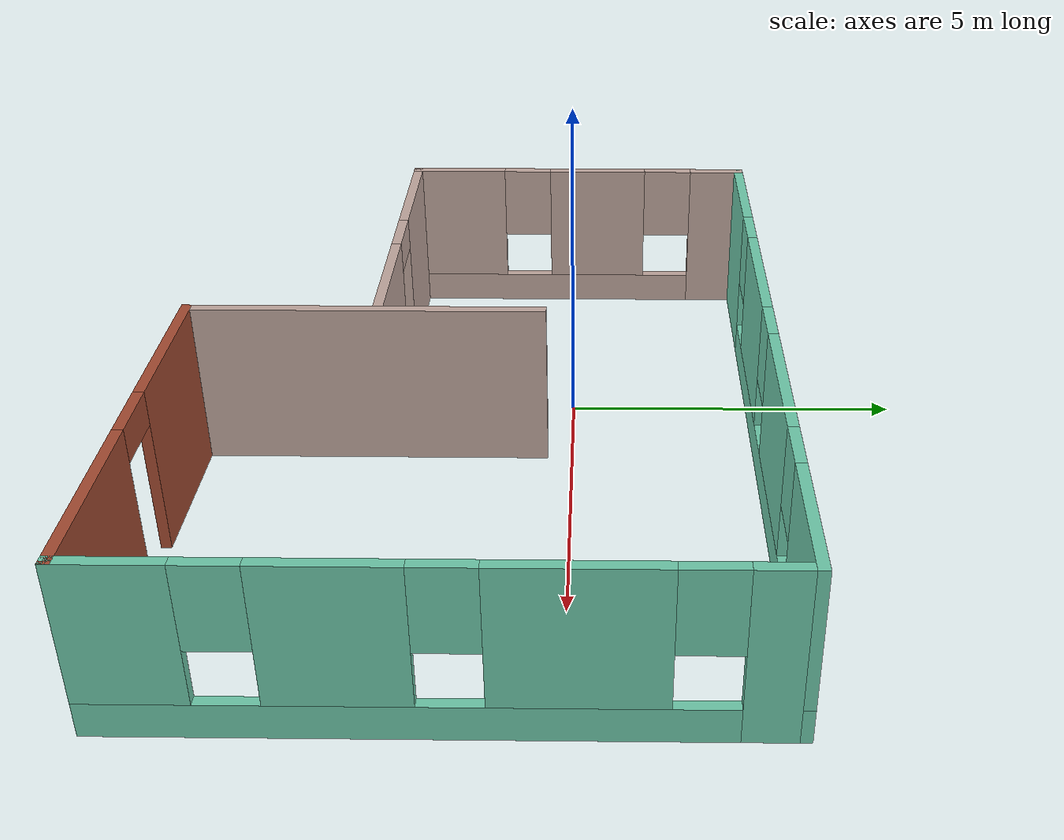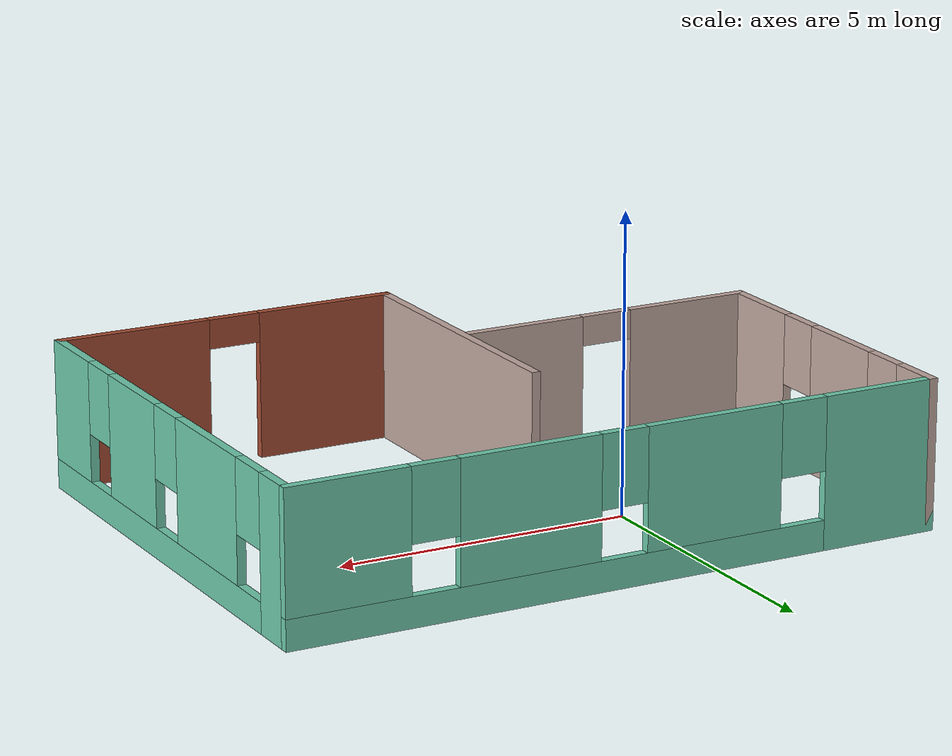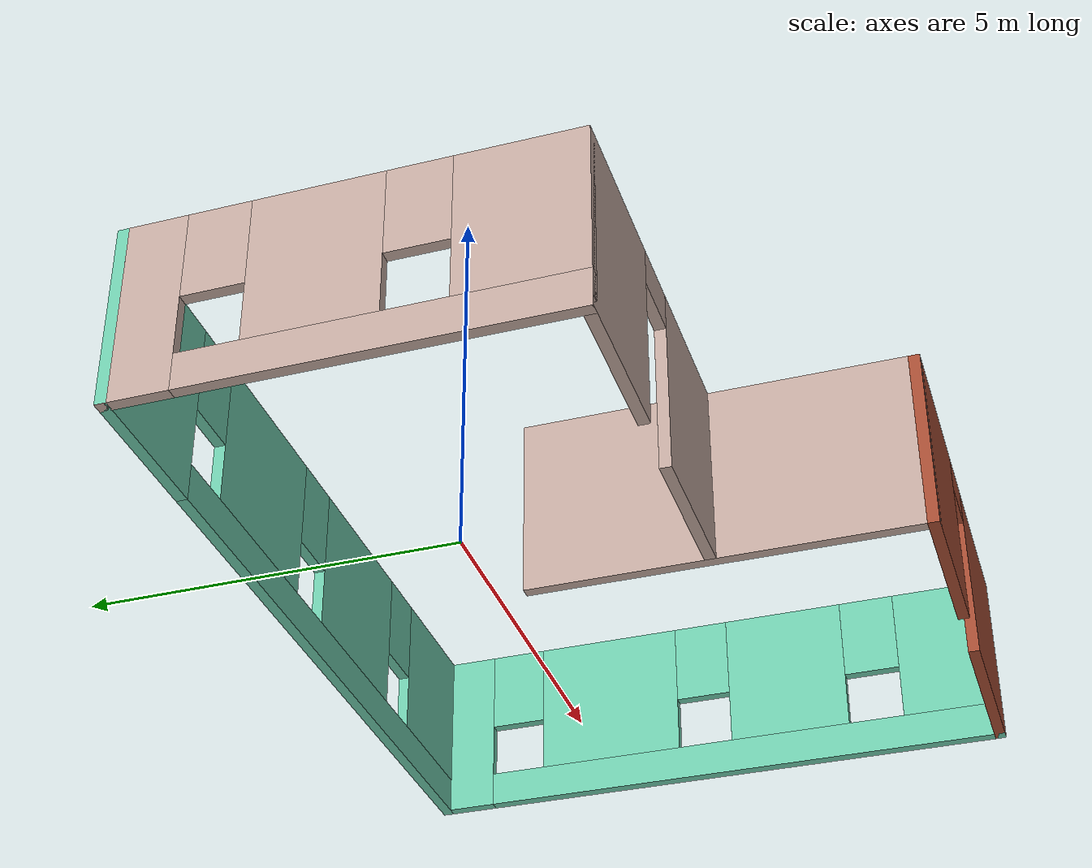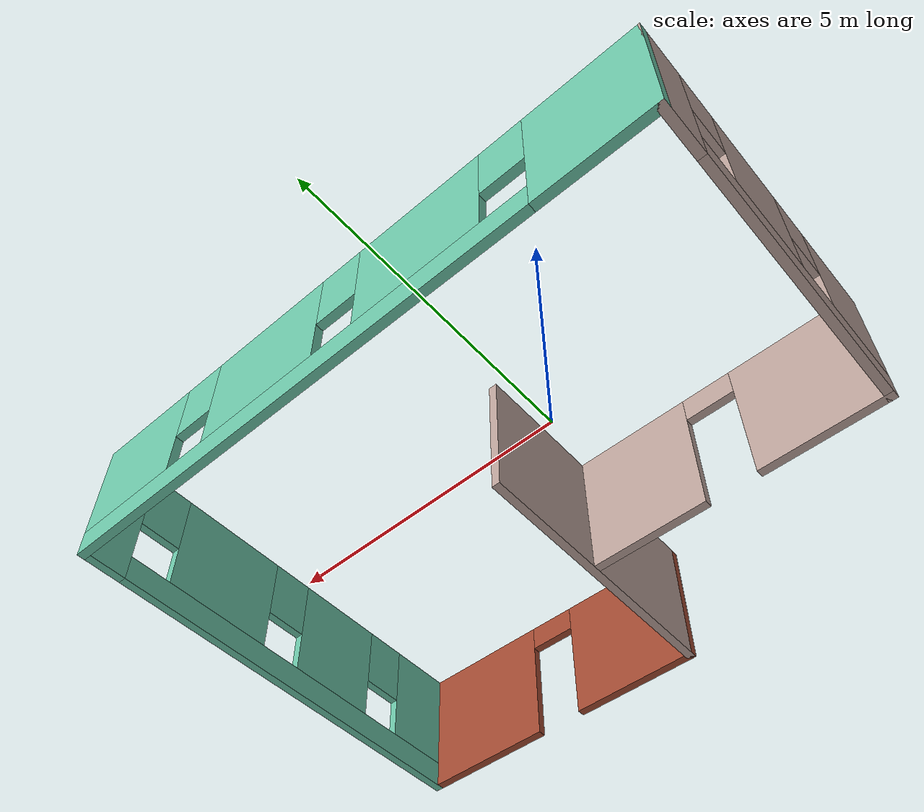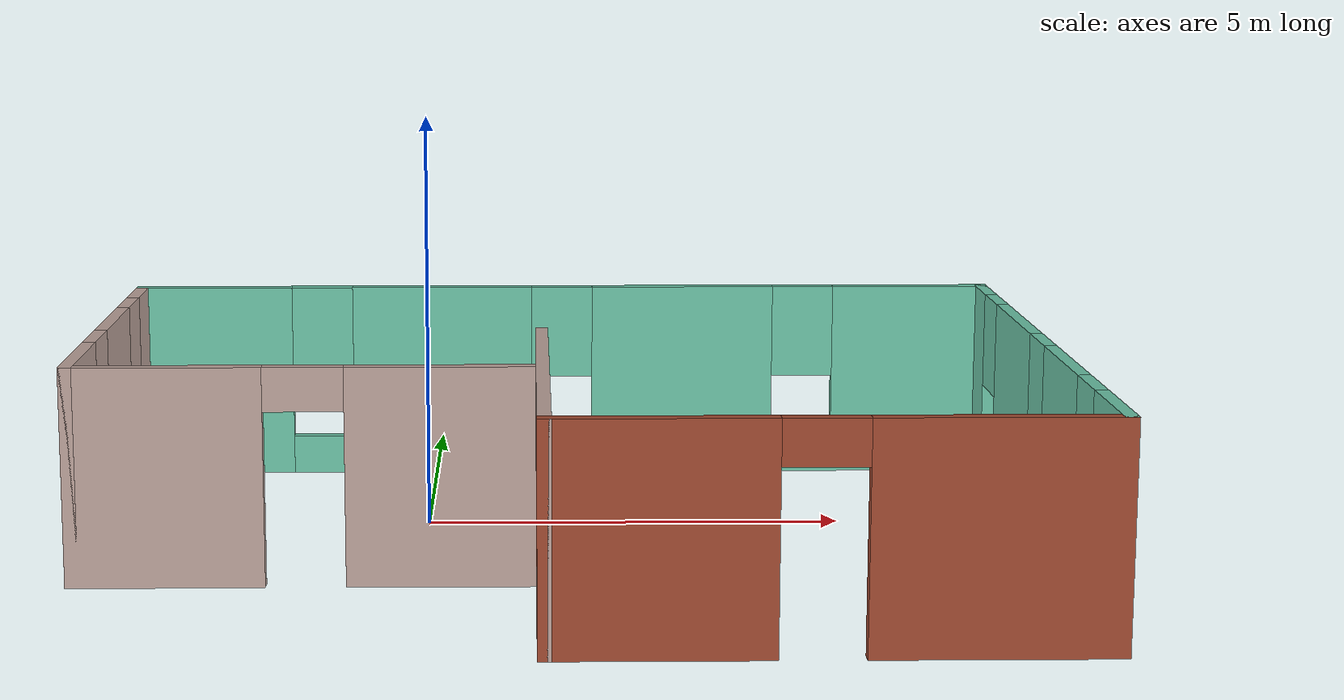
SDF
<?xml version='1.0'?>
<sdf version='1.6'>
  <model name='simple_apartment'>
    <pose frame=''>1.6744 -1.36599 0 0 -0 0</pose>
    <link name='Wall_0'>
      <pose frame=''>-5.55 1.37501 0 0 -0 -1.5708</pose>
      <visual name='Wall_0_Visual_0'>
        <pose frame=''>-2.41953 0 1.25 0 -0 0</pose>
        <geometry>
          <box>
            <size>0.910939 0.15 2.5</size>
          </box>
        </geometry>
        <material>
          <script>
            <uri>file://media/materials/scripts/gazebo.material</uri>
            <name>Gazebo/Grey</name>
          </script>
          <ambient>0.760784 0.662745 0.627451 1</ambient>
        </material>
        <meta>
          <layer>0</layer>
        </meta>
      </visual>
      <collision name='Wall_0_Collision_0'>
        <geometry>
          <box>
            <size>0.910939 0.15 2.5</size>
          </box>
        </geometry>
        <pose frame=''>-2.41953 0 1.25 0 -0 0</pose>
      </collision>
      <visual name='Wall_0_Visual_1'>
        <pose frame=''>0.45547 0 0.25 0 -0 0</pose>
        <geometry>
          <box>
            <size>4.83906 0.15 0.5</size>
          </box>
        </geometry>
        <material>
          <script>
            <uri>file://media/materials/scripts/gazebo.material</uri>
            <name>Gazebo/Grey</name>
          </script>
          <ambient>0.760784 0.662745 0.627451 1</ambient>
        </material>
        <meta>
          <layer>0</layer>
        </meta>
      </visual>
      <collision name='Wall_0_Collision_1'>
        <geometry>
          <box>
            <size>4.83906 0.15 0.5</size>
          </box>
        </geometry>
        <pose frame=''>0.45547 0 0.25 0 -0 0</pose>
      </collision>
      <visual name='Wall_0_Visual_2'>
        <pose frame=''>-0.340452 0 1.5 0 -0 0</pose>
        <geometry>
          <box>
            <size>1.64722 0.15 2</size>
          </box>
        </geometry>
        <material>
          <script>
            <uri>file://media/materials/scripts/gazebo.material</uri>
            <name>Gazebo/Grey</name>
          </script>
          <ambient>0.760784 0.662745 0.627451 1</ambient>
        </material>
        <meta>
          <layer>0</layer>
        </meta>
      </visual>
      <collision name='Wall_0_Collision_2'>
        <geometry>
          <box>
            <size>1.64722 0.15 2</size>
          </box>
        </geometry>
        <pose frame=''>-0.340452 0 1.5 0 -0 0</pose>
      </collision>
      <visual name='Wall_0_Visual_3'>
        <pose frame=''>2.07908 0 1.5 0 -0 0</pose>
        <geometry>
          <box>
            <size>1.59184 0.15 2</size>
          </box>
        </geometry>
        <material>
          <script>
            <uri>file://media/materials/scripts/gazebo.material</uri>
            <name>Gazebo/Grey</name>
          </script>
          <ambient>0.760784 0.662745 0.627451 1</ambient>
        </material>
        <meta>
          <layer>0</layer>
        </meta>
      </visual>
      <collision name='Wall_0_Collision_3'>
        <geometry>
          <box>
            <size>1.59184 0.15 2</size>
          </box>
        </geometry>
        <pose frame=''>2.07908 0 1.5 0 -0 0</pose>
      </collision>
      <visual name='Wall_0_Visual_4'>
        <pose frame=''>-1.56406 0 1.9 0 -0 0</pose>
        <geometry>
          <box>
            <size>0.8 0.15 1.2</size>
          </box>
        </geometry>
        <material>
          <script>
            <uri>file://media/materials/scripts/gazebo.material</uri>
            <name>Gazebo/Grey</name>
          </script>
          <ambient>0.760784 0.662745 0.627451 1</ambient>
        </material>
        <meta>
          <layer>0</layer>
        </meta>
      </visual>
      <collision name='Wall_0_Collision_4'>
        <geometry>
          <box>
            <size>0.8 0.15 1.2</size>
          </box>
        </geometry>
        <pose frame=''>-1.56406 0 1.9 0 -0 0</pose>
      </collision>
      <visual name='Wall_0_Visual_5'>
        <pose frame=''>0.883157 0 1.9 0 -0 0</pose>
        <geometry>
          <box>
            <size>0.8 0.15 1.2</size>
          </box>
        </geometry>
        <material>
          <script>
            <uri>file://media/materials/scripts/gazebo.material</uri>
            <name>Gazebo/Grey</name>
          </script>
          <ambient>0.760784 0.662745 0.627451 1</ambient>
        </material>
        <meta>
          <layer>0</layer>
        </meta>
      </visual>
      <collision name='Wall_0_Collision_5'>
        <geometry>
          <box>
            <size>0.8 0.15 1.2</size>
          </box>
        </geometry>
        <pose frame=''>0.883157 0 1.9 0 -0 0</pose>
      </collision>
    </link>
    <link name='Wall_2'>
      <pose frame=''>-2e-06 4.17501 0 0 -0 0</pose>
      <visual name='Wall_2_Visual_0'>
        <pose frame=''>-4.60364 0 1.25 0 -0 0</pose>
        <geometry>
          <box>
            <size>2.04272 0.15 2.5</size>
          </box>
        </geometry>
        <material>
          <script>
            <uri>file://media/materials/scripts/gazebo.material</uri>
            <name>Gazebo/Grey</name>
          </script>
          <ambient>0.435294 0.796078 0.67451 1</ambient>
        </material>
        <meta>
          <layer>0</layer>
        </meta>
      </visual>
      <collision name='Wall_2_Collision_0'>
        <geometry>
          <box>
            <size>2.04272 0.15 2.5</size>
          </box>
        </geometry>
        <pose frame=''>-4.60364 0 1.25 0 -0 0</pose>
      </collision>
      <visual name='Wall_2_Visual_1'>
        <pose frame=''>1.02136 0 0.25 0 -0 0</pose>
        <geometry>
          <box>
            <size>9.20728 0.15 0.5</size>
          </box>
        </geometry>
        <material>
          <script>
            <uri>file://media/materials/scripts/gazebo.material</uri>
            <name>Gazebo/Grey</name>
          </script>
          <ambient>0.435294 0.796078 0.67451 1</ambient>
        </material>
        <meta>
          <layer>0</layer>
        </meta>
      </visual>
      <collision name='Wall_2_Collision_1'>
        <geometry>
          <box>
            <size>9.20728 0.15 0.5</size>
          </box>
        </geometry>
        <pose frame=''>1.02136 0 0.25 0 -0 0</pose>
      </collision>
      <visual name='Wall_2_Visual_2'>
        <pose frame=''>-1.59956 0 1.5 0 -0 0</pose>
        <geometry>
          <box>
            <size>2.36542 0.15 2</size>
          </box>
        </geometry>
        <material>
          <script>
            <uri>file://media/materials/scripts/gazebo.material</uri>
            <name>Gazebo/Grey</name>
          </script>
          <ambient>0.435294 0.796078 0.67451 1</ambient>
        </material>
        <meta>
          <layer>0</layer>
        </meta>
      </visual>
      <collision name='Wall_2_Collision_2'>
        <geometry>
          <box>
            <size>2.36542 0.15 2</size>
          </box>
        </geometry>
        <pose frame=''>-1.59956 0 1.5 0 -0 0</pose>
      </collision>
      <visual name='Wall_2_Visual_3'>
        <pose frame=''>1.57916 0 1.5 0 -0 0</pose>
        <geometry>
          <box>
            <size>2.39202 0.15 2</size>
          </box>
        </geometry>
        <material>
          <script>
            <uri>file://media/materials/scripts/gazebo.material</uri>
            <name>Gazebo/Grey</name>
          </script>
          <ambient>0.435294 0.796078 0.67451 1</ambient>
        </material>
        <meta>
          <layer>0</layer>
        </meta>
      </visual>
      <collision name='Wall_2_Collision_3'>
        <geometry>
          <box>
            <size>2.39202 0.15 2</size>
          </box>
        </geometry>
        <pose frame=''>1.57916 0 1.5 0 -0 0</pose>
      </collision>
      <visual name='Wall_2_Visual_4'>
        <pose frame=''>4.60008 0 1.5 0 -0 0</pose>
        <geometry>
          <box>
            <size>2.04983 0.15 2</size>
          </box>
        </geometry>
        <material>
          <script>
            <uri>file://media/materials/scripts/gazebo.material</uri>
            <name>Gazebo/Grey</name>
          </script>
          <ambient>0.435294 0.796078 0.67451 1</ambient>
        </material>
        <meta>
          <layer>0</layer>
        </meta>
      </visual>
      <collision name='Wall_2_Collision_4'>
        <geometry>
          <box>
            <size>2.04983 0.15 2</size>
          </box>
        </geometry>
        <pose frame=''>4.60008 0 1.5 0 -0 0</pose>
      </collision>
      <visual name='Wall_2_Visual_5'>
        <pose frame=''>-3.18228 0 1.9 0 -0 0</pose>
        <geometry>
          <box>
            <size>0.8 0.15 1.2</size>
          </box>
        </geometry>
        <material>
          <script>
            <uri>file://media/materials/scripts/gazebo.material</uri>
            <name>Gazebo/Grey</name>
          </script>
          <ambient>0.435294 0.796078 0.67451 1</ambient>
        </material>
        <meta>
          <layer>0</layer>
        </meta>
      </visual>
      <collision name='Wall_2_Collision_5'>
        <geometry>
          <box>
            <size>0.8 0.15 1.2</size>
          </box>
        </geometry>
        <pose frame=''>-3.18228 0 1.9 0 -0 0</pose>
      </collision>
      <visual name='Wall_2_Visual_6'>
        <pose frame=''>-0.016853 0 1.9 0 -0 0</pose>
        <geometry>
          <box>
            <size>0.8 0.15 1.2</size>
          </box>
        </geometry>
        <material>
          <script>
            <uri>file://media/materials/scripts/gazebo.material</uri>
            <name>Gazebo/Grey</name>
          </script>
          <ambient>0.435294 0.796078 0.67451 1</ambient>
        </material>
        <meta>
          <layer>0</layer>
        </meta>
      </visual>
      <collision name='Wall_2_Collision_6'>
        <geometry>
          <box>
            <size>0.8 0.15 1.2</size>
          </box>
        </geometry>
        <pose frame=''>-0.016853 0 1.9 0 -0 0</pose>
      </collision>
      <visual name='Wall_2_Visual_7'>
        <pose frame=''>3.17517 0 1.9 0 -0 0</pose>
        <geometry>
          <box>
            <size>0.8 0.15 1.2</size>
          </box>
        </geometry>
        <material>
          <script>
            <uri>file://media/materials/scripts/gazebo.material</uri>
            <name>Gazebo/Grey</name>
          </script>
          <ambient>0.435294 0.796078 0.67451 1</ambient>
        </material>
        <meta>
          <layer>0</layer>
        </meta>
      </visual>
      <collision name='Wall_2_Collision_7'>
        <geometry>
          <box>
            <size>0.8 0.15 1.2</size>
          </box>
        </geometry>
        <pose frame=''>3.17517 0 1.9 0 -0 0</pose>
      </collision>
    </link>
    <link name='Wall_3'>
      <pose frame=''>5.5498 -0 0 0 -0 -1.57084</pose>
      <visual name='Wall_3_Visual_0'>
        <pose frame=''>-3.83444 0 1.25 0 -0 0</pose>
        <geometry>
          <box>
            <size>0.831127 0.15 2.5</size>
          </box>
        </geometry>
        <material>
          <script>
            <uri>file://media/materials/scripts/gazebo.material</uri>
            <name>Gazebo/Grey</name>
          </script>
          <ambient>0.435294 0.796078 0.67451 1</ambient>
        </material>
        <meta>
          <layer>0</layer>
        </meta>
      </visual>
      <collision name='Wall_3_Collision_0'>
        <geometry>
          <box>
            <size>0.831127 0.15 2.5</size>
          </box>
        </geometry>
        <pose frame=''>-3.83444 0 1.25 0 -0 0</pose>
      </collision>
      <visual name='Wall_3_Visual_1'>
        <pose frame=''>0.415564 0 0.25 0 -0 0</pose>
        <geometry>
          <box>
            <size>7.66887 0.15 0.5</size>
          </box>
        </geometry>
        <material>
          <script>
            <uri>file://media/materials/scripts/gazebo.material</uri>
            <name>Gazebo/Grey</name>
          </script>
          <ambient>0.435294 0.796078 0.67451 1</ambient>
        </material>
        <meta>
          <layer>0</layer>
        </meta>
      </visual>
      <collision name='Wall_3_Collision_1'>
        <geometry>
          <box>
            <size>7.66887 0.15 0.5</size>
          </box>
        </geometry>
        <pose frame=''>0.415564 0 0.25 0 -0 0</pose>
      </collision>
      <visual name='Wall_3_Visual_2'>
        <pose frame=''>-1.55586 0 1.5 0 -0 0</pose>
        <geometry>
          <box>
            <size>2.12603 0.15 2</size>
          </box>
        </geometry>
        <material>
          <script>
            <uri>file://media/materials/scripts/gazebo.material</uri>
            <name>Gazebo/Grey</name>
          </script>
          <ambient>0.435294 0.796078 0.67451 1</ambient>
        </material>
        <meta>
          <layer>0</layer>
        </meta>
      </visual>
      <collision name='Wall_3_Collision_2'>
        <geometry>
          <box>
            <size>2.12603 0.15 2</size>
          </box>
        </geometry>
        <pose frame=''>-1.55586 0 1.5 0 -0 0</pose>
      </collision>
      <visual name='Wall_3_Visual_3'>
        <pose frame=''>1.18397 0 1.5 0 -0 0</pose>
        <geometry>
          <box>
            <size>1.75361 0.15 2</size>
          </box>
        </geometry>
        <material>
          <script>
            <uri>file://media/materials/scripts/gazebo.material</uri>
            <name>Gazebo/Grey</name>
          </script>
          <ambient>0.435294 0.796078 0.67451 1</ambient>
        </material>
        <meta>
          <layer>0</layer>
        </meta>
      </visual>
      <collision name='Wall_3_Collision_3'>
        <geometry>
          <box>
            <size>1.75361 0.15 2</size>
          </box>
        </geometry>
        <pose frame=''>1.18397 0 1.5 0 -0 0</pose>
      </collision>
      <visual name='Wall_3_Visual_4'>
        <pose frame=''>3.55539 0 1.5 0 -0 0</pose>
        <geometry>
          <box>
            <size>1.38923 0.15 2</size>
          </box>
        </geometry>
        <material>
          <script>
            <uri>file://media/materials/scripts/gazebo.material</uri>
            <name>Gazebo/Grey</name>
          </script>
          <ambient>0.435294 0.796078 0.67451 1</ambient>
        </material>
        <meta>
          <layer>0</layer>
        </meta>
      </visual>
      <collision name='Wall_3_Collision_4'>
        <geometry>
          <box>
            <size>1.38923 0.15 2</size>
          </box>
        </geometry>
        <pose frame=''>3.55539 0 1.5 0 -0 0</pose>
      </collision>
      <visual name='Wall_3_Visual_5'>
        <pose frame=''>-3.01887 0 1.9 0 -0 0</pose>
        <geometry>
          <box>
            <size>0.8 0.15 1.2</size>
          </box>
        </geometry>
        <material>
          <script>
            <uri>file://media/materials/scripts/gazebo.material</uri>
            <name>Gazebo/Grey</name>
          </script>
          <ambient>0.435294 0.796078 0.67451 1</ambient>
        </material>
        <meta>
          <layer>0</layer>
        </meta>
      </visual>
      <collision name='Wall_3_Collision_5'>
        <geometry>
          <box>
            <size>0.8 0.15 1.2</size>
          </box>
        </geometry>
        <pose frame=''>-3.01887 0 1.9 0 -0 0</pose>
      </collision>
      <visual name='Wall_3_Visual_6'>
        <pose frame=''>-0.092839 0 1.9 0 -0 0</pose>
        <geometry>
          <box>
            <size>0.8 0.15 1.2</size>
          </box>
        </geometry>
        <material>
          <script>
            <uri>file://media/materials/scripts/gazebo.material</uri>
            <name>Gazebo/Grey</name>
          </script>
          <ambient>0.435294 0.796078 0.67451 1</ambient>
        </material>
        <meta>
          <layer>0</layer>
        </meta>
      </visual>
      <collision name='Wall_3_Collision_6'>
        <geometry>
          <box>
            <size>0.8 0.15 1.2</size>
          </box>
        </geometry>
        <pose frame=''>-0.092839 0 1.9 0 -0 0</pose>
      </collision>
      <visual name='Wall_3_Visual_7'>
        <pose frame=''>2.46077 0 1.9 0 -0 0</pose>
        <geometry>
          <box>
            <size>0.8 0.15 1.2</size>
          </box>
        </geometry>
        <material>
          <script>
            <uri>file://media/materials/scripts/gazebo.material</uri>
            <name>Gazebo/Grey</name>
          </script>
          <ambient>0.435294 0.796078 0.67451 1</ambient>
        </material>
        <meta>
          <layer>0</layer>
        </meta>
      </visual>
      <collision name='Wall_3_Collision_7'>
        <geometry>
          <box>
            <size>0.8 0.15 1.2</size>
          </box>
        </geometry>
        <pose frame=''>2.46077 0 1.9 0 -0 0</pose>
      </collision>
    </link>
    <link name='Wall_4'>
      <pose frame=''>2.6246 -4.17501 0 0 -0 3.14159</pose>
      <visual name='Wall_4_Visual_0'>
        <pose frame=''>-1.66778 0 1.25 0 -0 0</pose>
        <geometry>
          <box>
            <size>2.66444 0.15 2.5</size>
          </box>
        </geometry>
        <material>
          <script>
            <uri>file://media/materials/scripts/gazebo.material</uri>
            <name>Gazebo/Bricks</name>
          </script>
          <ambient>1 1 1 1</ambient>
        </material>
        <meta>
          <layer>0</layer>
        </meta>
      </visual>
      <collision name='Wall_4_Collision_0'>
        <geometry>
          <box>
            <size>2.66444 0.15 2.5</size>
          </box>
        </geometry>
        <pose frame=''>-1.66778 0 1.25 0 -0 0</pose>
      </collision>
      <visual name='Wall_4_Visual_1'>
        <pose frame=''>1.78222 0 1.25 0 -0 0</pose>
        <geometry>
          <box>
            <size>2.43556 0.15 2.5</size>
          </box>
        </geometry>
        <material>
          <script>
            <uri>file://media/materials/scripts/gazebo.material</uri>
            <name>Gazebo/Bricks</name>
          </script>
          <ambient>1 1 1 1</ambient>
        </material>
        <meta>
          <layer>0</layer>
        </meta>
      </visual>
      <collision name='Wall_4_Collision_1'>
        <geometry>
          <box>
            <size>2.43556 0.15 2.5</size>
          </box>
        </geometry>
        <pose frame=''>1.78222 0 1.25 0 -0 0</pose>
      </collision>
      <visual name='Wall_4_Visual_2'>
        <pose frame=''>0.114437 0 2.25 0 -0 0</pose>
        <geometry>
          <box>
            <size>0.9 0.15 0.5</size>
          </box>
        </geometry>
        <material>
          <script>
            <uri>file://media/materials/scripts/gazebo.material</uri>
            <name>Gazebo/Bricks</name>
          </script>
          <ambient>1 1 1 1</ambient>
        </material>
        <meta>
          <layer>0</layer>
        </meta>
      </visual>
      <collision name='Wall_4_Collision_2'>
        <geometry>
          <box>
            <size>0.9 0.15 0.5</size>
          </box>
        </geometry>
        <pose frame=''>0.114437 0 2.25 0 -0 0</pose>
      </collision>
    </link>
    <link name='Wall_5'>
      <collision name='Wall_5_Collision'>
        <geometry>
          <box>
            <size>5.25 0.15 2.5</size>
          </box>
        </geometry>
        <pose frame=''>0 0 1.25 0 -0 0</pose>
      </collision>
      <visual name='Wall_5_Visual'>
        <pose frame=''>0 0 1.25 0 -0 0</pose>
        <geometry>
          <box>
            <size>5.25 0.15 2.5</size>
          </box>
        </geometry>
        <material>
          <script>
            <uri>file://media/materials/scripts/gazebo.material</uri>
            <name>Gazebo/Grey</name>
          </script>
          <ambient>0.760784 0.662745 0.627451 1</ambient>
        </material>
        <meta>
          <layer>0</layer>
        </meta>
      </visual>
      <pose frame=''>-0.3002 -1.625 0 0 -0 1.57072</pose>
    </link>
    <link name='Wall_7'>
      <pose frame=''>-3 -1.42499 0 0 -0 0</pose>
      <visual name='Wall_7_Visual_0'>
        <pose frame=''>-1.50894 0 1.25 0 -0 0</pose>
        <geometry>
          <box>
            <size>2.23212 0.15 2.5</size>
          </box>
        </geometry>
        <material>
          <script>
            <uri>file://media/materials/scripts/gazebo.material</uri>
            <name>Gazebo/Grey</name>
          </script>
          <ambient>0.760784 0.662745 0.627451 1</ambient>
        </material>
        <meta>
          <layer>0</layer>
        </meta>
      </visual>
      <collision name='Wall_7_Collision_0'>
        <geometry>
          <box>
            <size>2.23212 0.15 2.5</size>
          </box>
        </geometry>
        <pose frame=''>-1.50894 0 1.25 0 -0 0</pose>
      </collision>
      <visual name='Wall_7_Visual_1'>
        <pose frame=''>1.56606 0 1.25 0 -0 0</pose>
        <geometry>
          <box>
            <size>2.11788 0.15 2.5</size>
          </box>
        </geometry>
        <material>
          <script>
            <uri>file://media/materials/scripts/gazebo.material</uri>
            <name>Gazebo/Grey</name>
          </script>
          <ambient>0.760784 0.662745 0.627451 1</ambient>
        </material>
        <meta>
          <layer>0</layer>
        </meta>
      </visual>
      <collision name='Wall_7_Collision_1'>
        <geometry>
          <box>
            <size>2.11788 0.15 2.5</size>
          </box>
        </geometry>
        <pose frame=''>1.56606 0 1.25 0 -0 0</pose>
      </collision>
      <visual name='Wall_7_Visual_2'>
        <pose frame=''>0.057125 0 2.25 0 -0 0</pose>
        <geometry>
          <box>
            <size>0.9 0.15 0.5</size>
          </box>
        </geometry>
        <material>
          <script>
            <uri>file://media/materials/scripts/gazebo.material</uri>
            <name>Gazebo/Grey</name>
          </script>
          <ambient>0.760784 0.662745 0.627451 1</ambient>
        </material>
        <meta>
          <layer>0</layer>
        </meta>
      </visual>
      <collision name='Wall_7_Collision_2'>
        <geometry>
          <box>
            <size>0.9 0.15 0.5</size>
          </box>
        </geometry>
        <pose frame=''>0.057125 0 2.25 0 -0 0</pose>
      </collision>
    </link>
    <static>1</static>
  </model>
</sdf>
